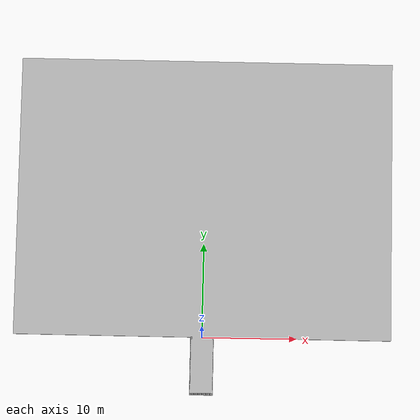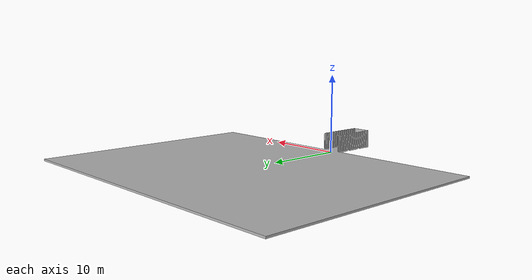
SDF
<?xml version="1.0" ?>
<sdf version="1.6">
  <model name="Warehouse_with_open_top_container">
    <static>true</static>
    <link name="link">
      <collision name="collision">
        <geometry>
          <mesh>
            <uri>model://warehouse_03/meshes/warehouse_v05_2 v1.stl</uri>
            <scale>0.001 0.001 0.001</scale>
          </mesh>
        </geometry>
      </collision>
      <visual name="visual">
        <geometry>
          <mesh>
            <uri>model://warehouse_03/meshes/warehouse_v05_2 v1.stl</uri>
            <scale>0.001 0.001 0.001</scale>
          </mesh>
        </geometry>
      </visual>
    </link>
  </model>
</sdf>
<scale>0.1 0.1 0.1</scale>
